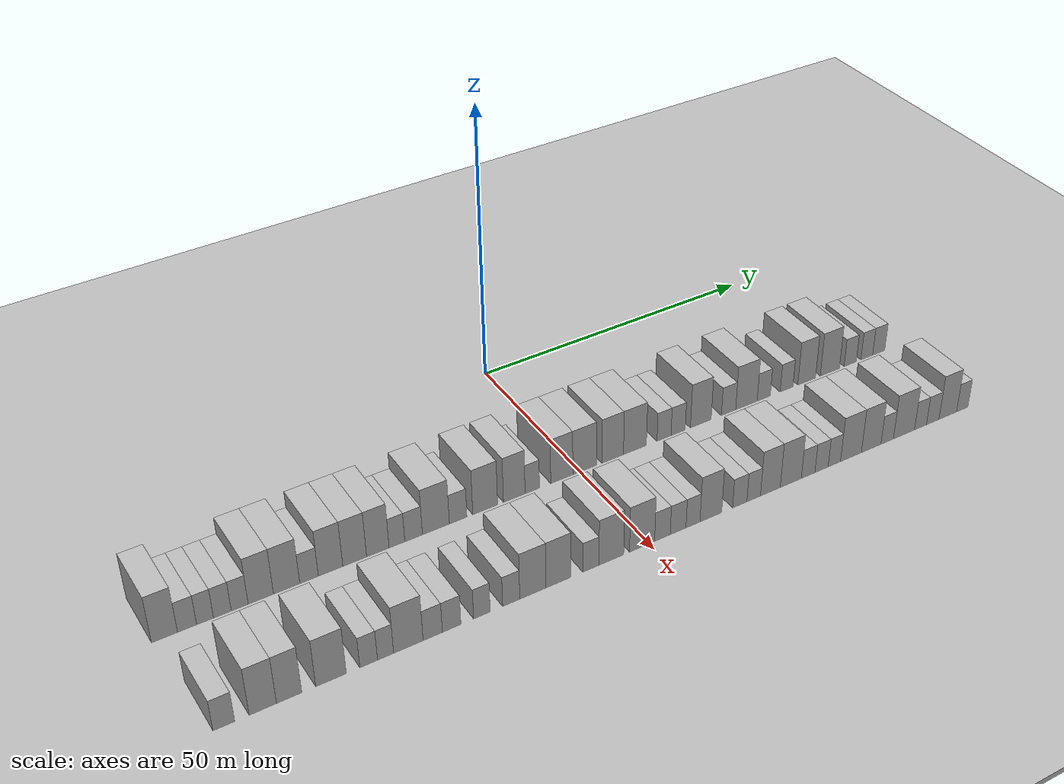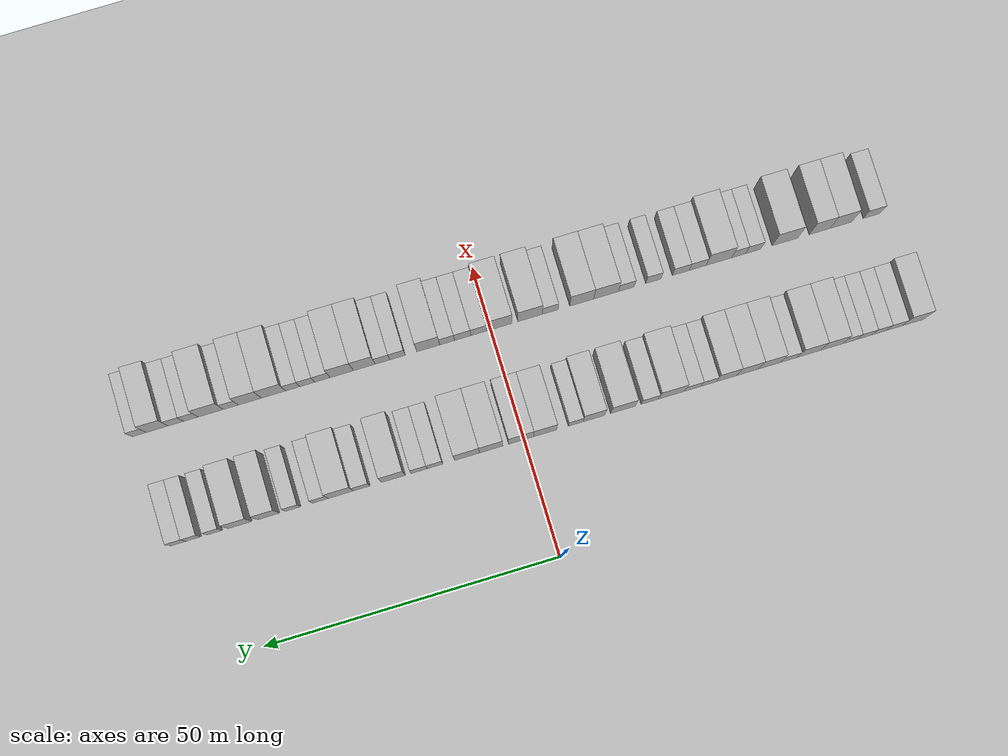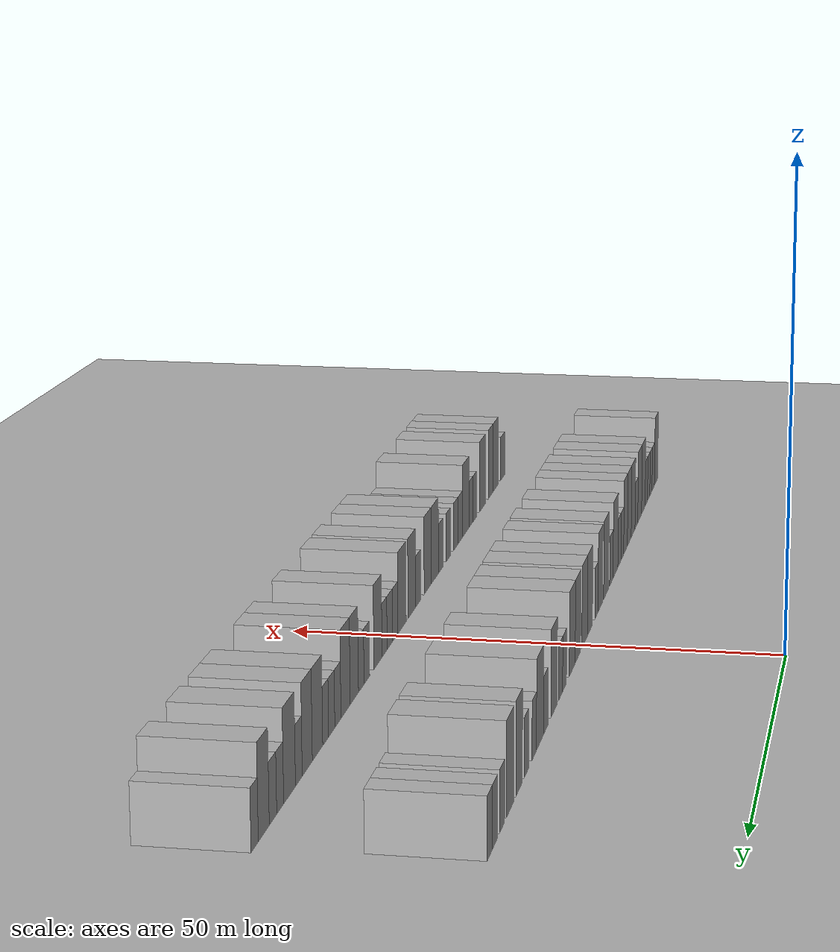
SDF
<sdf version="1.6">
 <world name="default">
  <include><name>ground_plane_1</name><uri>model://HANNAS_ground_plane</uri></include>
  <include>
   <name>ground_plane_2</name>
   <uri>model://HANNAS_ground_plane</uri>
   <pose>100 0 0  0 0 0</pose>
  </include>
  <model name="building_35">
   <static>1</static>
   <pose>25.0000 -66.9043 0 0.000000 0.000000 0.000000</pose>
   <link name="link">
    <pose>0 0 4.50 0 0 0</pose>
    <collision name="collision"><geometry><box><size>10.0000 3.7268 9.0000</size></box></geometry></collision>
    <visual name="visual">
     <cast_shadows>0</cast_shadows>
     <geometry><box><size>10.0000 3.7268 9.0000</size></box></geometry>
     <material>
      <script>
       <uri>model://HANNAS_wall/materials/scripts</uri>
       <uri>model://HANNAS_wall/materials/textures</uri>
       <name>vrc/HANNAS_wall</name>
      </script>
     </material>
    </visual>
   </link>
  </model>
  <model name="building_36">
   <static>1</static>
   <pose>25.0000 -63.6549 0 0.000000 0.000000 0.000000</pose>
   <link name="link">
    <pose>0 0 3.00 0 0 0</pose>
    <collision name="collision"><geometry><box><size>10.0000 2.7721 6.0000</size></box></geometry></collision>
    <visual name="visual">
     <cast_shadows>0</cast_shadows>
     <geometry><box><size>10.0000 2.7721 6.0000</size></box></geometry>
     <material>
      <script>
       <uri>model://HANNAS_wall/materials/scripts</uri>
       <uri>model://HANNAS_wall/materials/textures</uri>
       <name>vrc/HANNAS_wall</name>
      </script>
     </material>
    </visual>
   </link>
  </model>
  <model name="building_37">
   <static>1</static>
   <pose>25.0000 -61.0405 0 0.000000 0.000000 0.000000</pose>
   <link name="link">
    <pose>0 0 3.00 0 0 0</pose>
    <collision name="collision"><geometry><box><size>10.0000 2.4567 6.0000</size></box></geometry></collision>
    <visual name="visual">
     <cast_shadows>0</cast_shadows>
     <geometry><box><size>10.0000 2.4567 6.0000</size></box></geometry>
     <material>
      <script>
       <uri>model://HANNAS_wall/materials/scripts</uri>
       <uri>model://HANNAS_wall/materials/textures</uri>
       <name>vrc/HANNAS_wall</name>
      </script>
     </material>
    </visual>
   </link>
  </model>
  <model name="building_38">
   <static>1</static>
   <pose>25.0000 -58.5033 0 0.000000 0.000000 0.000000</pose>
   <link name="link">
    <pose>0 0 3.00 0 0 0</pose>
    <collision name="collision"><geometry><box><size>10.0000 2.6177 6.0000</size></box></geometry></collision>
    <visual name="visual">
     <cast_shadows>0</cast_shadows>
     <geometry><box><size>10.0000 2.6177 6.0000</size></box></geometry>
     <material>
      <script>
       <uri>model://HANNAS_wall/materials/scripts</uri>
       <uri>model://HANNAS_wall/materials/textures</uri>
       <name>vrc/HANNAS_wall</name>
      </script>
     </material>
    </visual>
   </link>
  </model>
  <model name="building_39">
   <static>1</static>
   <pose>25.0000 -55.9374 0 0.000000 0.000000 0.000000</pose>
   <link name="link">
    <pose>0 0 3.00 0 0 0</pose>
    <collision name="collision"><geometry><box><size>10.0000 2.5140 6.0000</size></box></geometry></collision>
    <visual name="visual">
     <cast_shadows>0</cast_shadows>
     <geometry><box><size>10.0000 2.5140 6.0000</size></box></geometry>
     <material>
      <script>
       <uri>model://HANNAS_wall/materials/scripts</uri>
       <uri>model://HANNAS_wall/materials/textures</uri>
       <name>vrc/HANNAS_wall</name>
      </script>
     </material>
    </visual>
   </link>
  </model>
  <model name="building_40">
   <static>1</static>
   <pose>25.0000 -52.7762 0 0.000000 0.000000 0.000000</pose>
   <link name="link">
    <pose>0 0 4.50 0 0 0</pose>
    <collision name="collision"><geometry><box><size>10.0000 3.8085 9.0000</size></box></geometry></collision>
    <visual name="visual">
     <cast_shadows>0</cast_shadows>
     <geometry><box><size>10.0000 3.8085 9.0000</size></box></geometry>
     <material>
      <script>
       <uri>model://HANNAS_wall/materials/scripts</uri>
       <uri>model://HANNAS_wall/materials/textures</uri>
       <name>vrc/HANNAS_wall</name>
      </script>
     </material>
    </visual>
   </link>
  </model>
  <model name="building_41">
   <static>1</static>
   <pose>25.0000 -48.8694 0 0.000000 0.000000 0.000000</pose>
   <link name="link">
    <pose>0 0 4.50 0 0 0</pose>
    <collision name="collision"><geometry><box><size>10.0000 4.0051 9.0000</size></box></geometry></collision>
    <visual name="visual">
     <cast_shadows>0</cast_shadows>
     <geometry><box><size>10.0000 4.0051 9.0000</size></box></geometry>
     <material>
      <script>
       <uri>model://HANNAS_wall/materials/scripts</uri>
       <uri>model://HANNAS_wall/materials/textures</uri>
       <name>vrc/HANNAS_wall</name>
      </script>
     </material>
    </visual>
   </link>
  </model>
  <model name="building_42">
   <static>1</static>
   <pose>25.0000 -45.4330 0 0.000000 0.000000 0.000000</pose>
   <link name="link">
    <pose>0 0 3.00 0 0 0</pose>
    <collision name="collision"><geometry><box><size>10.0000 2.8677 6.0000</size></box></geometry></collision>
    <visual name="visual">
     <cast_shadows>0</cast_shadows>
     <geometry><box><size>10.0000 2.8677 6.0000</size></box></geometry>
     <material>
      <script>
       <uri>model://HANNAS_wall/materials/scripts</uri>
       <uri>model://HANNAS_wall/materials/textures</uri>
       <name>vrc/HANNAS_wall</name>
      </script>
     </material>
    </visual>
   </link>
  </model>
  <model name="building_43">
   <static>1</static>
   <pose>25.0000 -42.0925 0 0.000000 0.000000 0.000000</pose>
   <link name="link">
    <pose>0 0 4.50 0 0 0</pose>
    <collision name="collision"><geometry><box><size>10.0000 3.8132 9.0000</size></box></geometry></collision>
    <visual name="visual">
     <cast_shadows>0</cast_shadows>
     <geometry><box><size>10.0000 3.8132 9.0000</size></box></geometry>
     <material>
      <script>
       <uri>model://HANNAS_wall/materials/scripts</uri>
       <uri>model://HANNAS_wall/materials/textures</uri>
       <name>vrc/HANNAS_wall</name>
      </script>
     </material>
    </visual>
   </link>
  </model>
  <model name="building_44">
   <static>1</static>
   <pose>25.0000 -38.3010 0 0.000000 0.000000 0.000000</pose>
   <link name="link">
    <pose>0 0 4.50 0 0 0</pose>
    <collision name="collision"><geometry><box><size>10.0000 3.7698 9.0000</size></box></geometry></collision>
    <visual name="visual">
     <cast_shadows>0</cast_shadows>
     <geometry><box><size>10.0000 3.7698 9.0000</size></box></geometry>
     <material>
      <script>
       <uri>model://HANNAS_wall/materials/scripts</uri>
       <uri>model://HANNAS_wall/materials/textures</uri>
       <name>vrc/HANNAS_wall</name>
      </script>
     </material>
    </visual>
   </link>
  </model>
  <model name="building_45">
   <static>1</static>
   <pose>25.0000 -34.6114 0 0.000000 0.000000 0.000000</pose>
   <link name="link">
    <pose>0 0 4.50 0 0 0</pose>
    <collision name="collision"><geometry><box><size>10.0000 3.6094 9.0000</size></box></geometry></collision>
    <visual name="visual">
     <cast_shadows>0</cast_shadows>
     <geometry><box><size>10.0000 3.6094 9.0000</size></box></geometry>
     <material>
      <script>
       <uri>model://HANNAS_wall/materials/scripts</uri>
       <uri>model://HANNAS_wall/materials/textures</uri>
       <name>vrc/HANNAS_wall</name>
      </script>
     </material>
    </visual>
   </link>
  </model>
  <model name="building_46">
   <static>1</static>
   <pose>25.0000 -31.5375 0 0.000000 0.000000 0.000000</pose>
   <link name="link">
    <pose>0 0 3.00 0 0 0</pose>
    <collision name="collision"><geometry><box><size>10.0000 2.5385 6.0000</size></box></geometry></collision>
    <visual name="visual">
     <cast_shadows>0</cast_shadows>
     <geometry><box><size>10.0000 2.5385 6.0000</size></box></geometry>
     <material>
      <script>
       <uri>model://HANNAS_wall/materials/scripts</uri>
       <uri>model://HANNAS_wall/materials/textures</uri>
       <name>vrc/HANNAS_wall</name>
      </script>
     </material>
    </visual>
   </link>
  </model>
  <model name="building_47">
   <static>1</static>
   <pose>25.0000 -28.8306 0 0.000000 0.000000 0.000000</pose>
   <link name="link">
    <pose>0 0 3.00 0 0 0</pose>
    <collision name="collision"><geometry><box><size>10.0000 2.8753 6.0000</size></box></geometry></collision>
    <visual name="visual">
     <cast_shadows>0</cast_shadows>
     <geometry><box><size>10.0000 2.8753 6.0000</size></box></geometry>
     <material>
      <script>
       <uri>model://HANNAS_wall/materials/scripts</uri>
       <uri>model://HANNAS_wall/materials/textures</uri>
       <name>vrc/HANNAS_wall</name>
      </script>
     </material>
    </visual>
   </link>
  </model>
  <model name="building_48">
   <static>1</static>
   <pose>25.0000 -25.1582 0 0.000000 0.000000 0.000000</pose>
   <link name="link">
    <pose>0 0 4.50 0 0 0</pose>
    <collision name="collision"><geometry><box><size>10.0000 4.4695 9.0000</size></box></geometry></collision>
    <visual name="visual">
     <cast_shadows>0</cast_shadows>
     <geometry><box><size>10.0000 4.4695 9.0000</size></box></geometry>
     <material>
      <script>
       <uri>model://HANNAS_wall/materials/scripts</uri>
       <uri>model://HANNAS_wall/materials/textures</uri>
       <name>vrc/HANNAS_wall</name>
      </script>
     </material>
    </visual>
   </link>
  </model>
  <model name="building_49">
   <static>1</static>
   <pose>25.0000 -21.4547 0 0.000000 0.000000 0.000000</pose>
   <link name="link">
    <pose>0 0 3.00 0 0 0</pose>
    <collision name="collision"><geometry><box><size>10.0000 2.9375 6.0000</size></box></geometry></collision>
    <visual name="visual">
     <cast_shadows>0</cast_shadows>
     <geometry><box><size>10.0000 2.9375 6.0000</size></box></geometry>
     <material>
      <script>
       <uri>model://HANNAS_wall/materials/scripts</uri>
       <uri>model://HANNAS_wall/materials/textures</uri>
       <name>vrc/HANNAS_wall</name>
      </script>
     </material>
    </visual>
   </link>
  </model>
  <model name="building_50">
   <static>1</static>
   <pose>25.0000 -16.8715 0 0.000000 0.000000 0.000000</pose>
   <link name="link">
    <pose>0 0 4.50 0 0 0</pose>
    <collision name="collision"><geometry><box><size>10.0000 4.2289 9.0000</size></box></geometry></collision>
    <visual name="visual">
     <cast_shadows>0</cast_shadows>
     <geometry><box><size>10.0000 4.2289 9.0000</size></box></geometry>
     <material>
      <script>
       <uri>model://HANNAS_wall/materials/scripts</uri>
       <uri>model://HANNAS_wall/materials/textures</uri>
       <name>vrc/HANNAS_wall</name>
      </script>
     </material>
    </visual>
   </link>
  </model>
  <model name="building_51">
   <static>1</static>
   <pose>25.0000 -11.8884 0 0.000000 0.000000 0.000000</pose>
   <link name="link">
    <pose>0 0 4.50 0 0 0</pose>
    <collision name="collision"><geometry><box><size>10.0000 3.7371 9.0000</size></box></geometry></collision>
    <visual name="visual">
     <cast_shadows>0</cast_shadows>
     <geometry><box><size>10.0000 3.7371 9.0000</size></box></geometry>
     <material>
      <script>
       <uri>model://HANNAS_wall/materials/scripts</uri>
       <uri>model://HANNAS_wall/materials/textures</uri>
       <name>vrc/HANNAS_wall</name>
      </script>
     </material>
    </visual>
   </link>
  </model>
  <model name="building_52">
   <static>1</static>
   <pose>25.0000 -8.7649 0 0.000000 0.000000 0.000000</pose>
   <link name="link">
    <pose>0 0 3.00 0 0 0</pose>
    <collision name="collision"><geometry><box><size>10.0000 2.5099 6.0000</size></box></geometry></collision>
    <visual name="visual">
     <cast_shadows>0</cast_shadows>
     <geometry><box><size>10.0000 2.5099 6.0000</size></box></geometry>
     <material>
      <script>
       <uri>model://HANNAS_wall/materials/scripts</uri>
       <uri>model://HANNAS_wall/materials/textures</uri>
       <name>vrc/HANNAS_wall</name>
      </script>
     </material>
    </visual>
   </link>
  </model>
  <model name="building_53">
   <static>1</static>
   <pose>25.0000 -3.5517 0 0.000000 0.000000 0.000000</pose>
   <link name="link">
    <pose>0 0 4.50 0 0 0</pose>
    <collision name="collision"><geometry><box><size>10.0000 3.9164 9.0000</size></box></geometry></collision>
    <visual name="visual">
     <cast_shadows>0</cast_shadows>
     <geometry><box><size>10.0000 3.9164 9.0000</size></box></geometry>
     <material>
      <script>
       <uri>model://HANNAS_wall/materials/scripts</uri>
       <uri>model://HANNAS_wall/materials/textures</uri>
       <name>vrc/HANNAS_wall</name>
      </script>
     </material>
    </visual>
   </link>
  </model>
  <model name="building_54">
   <static>1</static>
   <pose>25.0000 0.5425 0 0.000000 0.000000 0.000000</pose>
   <link name="link">
    <pose>0 0 4.50 0 0 0</pose>
    <collision name="collision"><geometry><box><size>10.0000 4.2722 9.0000</size></box></geometry></collision>
    <visual name="visual">
     <cast_shadows>0</cast_shadows>
     <geometry><box><size>10.0000 4.2722 9.0000</size></box></geometry>
     <material>
      <script>
       <uri>model://HANNAS_wall/materials/scripts</uri>
       <uri>model://HANNAS_wall/materials/textures</uri>
       <name>vrc/HANNAS_wall</name>
      </script>
     </material>
    </visual>
   </link>
  </model>
  <model name="building_55">
   <static>1</static>
   <pose>25.0000 5.6538 0 0.000000 0.000000 0.000000</pose>
   <link name="link">
    <pose>0 0 4.50 0 0 0</pose>
    <collision name="collision"><geometry><box><size>10.0000 3.9503 9.0000</size></box></geometry></collision>
    <visual name="visual">
     <cast_shadows>0</cast_shadows>
     <geometry><box><size>10.0000 3.9503 9.0000</size></box></geometry>
     <material>
      <script>
       <uri>model://HANNAS_wall/materials/scripts</uri>
       <uri>model://HANNAS_wall/materials/textures</uri>
       <name>vrc/HANNAS_wall</name>
      </script>
     </material>
    </visual>
   </link>
  </model>
  <model name="building_56">
   <static>1</static>
   <pose>25.0000 9.7577 0 0.000000 0.000000 0.000000</pose>
   <link name="link">
    <pose>0 0 4.50 0 0 0</pose>
    <collision name="collision"><geometry><box><size>10.0000 4.2577 9.0000</size></box></geometry></collision>
    <visual name="visual">
     <cast_shadows>0</cast_shadows>
     <geometry><box><size>10.0000 4.2577 9.0000</size></box></geometry>
     <material>
      <script>
       <uri>model://HANNAS_wall/materials/scripts</uri>
       <uri>model://HANNAS_wall/materials/textures</uri>
       <name>vrc/HANNAS_wall</name>
      </script>
     </material>
    </visual>
   </link>
  </model>
  <model name="building_57">
   <static>1</static>
   <pose>25.0000 15.2113 0 0.000000 0.000000 0.000000</pose>
   <link name="link">
    <pose>0 0 3.00 0 0 0</pose>
    <collision name="collision"><geometry><box><size>10.0000 2.6495 6.0000</size></box></geometry></collision>
    <visual name="visual">
     <cast_shadows>0</cast_shadows>
     <geometry><box><size>10.0000 2.6495 6.0000</size></box></geometry>
     <material>
      <script>
       <uri>model://HANNAS_wall/materials/scripts</uri>
       <uri>model://HANNAS_wall/materials/textures</uri>
       <name>vrc/HANNAS_wall</name>
      </script>
     </material>
    </visual>
   </link>
  </model>
  <model name="building_58">
   <static>1</static>
   <pose>25.0000 17.8901 0 0.000000 0.000000 0.000000</pose>
   <link name="link">
    <pose>0 0 3.00 0 0 0</pose>
    <collision name="collision"><geometry><box><size>10.0000 2.7081 6.0000</size></box></geometry></collision>
    <visual name="visual">
     <cast_shadows>0</cast_shadows>
     <geometry><box><size>10.0000 2.7081 6.0000</size></box></geometry>
     <material>
      <script>
       <uri>model://HANNAS_wall/materials/scripts</uri>
       <uri>model://HANNAS_wall/materials/textures</uri>
       <name>vrc/HANNAS_wall</name>
      </script>
     </material>
    </visual>
   </link>
  </model>
  <model name="building_59">
   <static>1</static>
   <pose>25.0000 22.2503 0 0.000000 0.000000 0.000000</pose>
   <link name="link">
    <pose>0 0 4.50 0 0 0</pose>
    <collision name="collision"><geometry><box><size>10.0000 4.0121 9.0000</size></box></geometry></collision>
    <visual name="visual">
     <cast_shadows>0</cast_shadows>
     <geometry><box><size>10.0000 4.0121 9.0000</size></box></geometry>
     <material>
      <script>
       <uri>model://HANNAS_wall/materials/scripts</uri>
       <uri>model://HANNAS_wall/materials/textures</uri>
       <name>vrc/HANNAS_wall</name>
      </script>
     </material>
    </visual>
   </link>
  </model>
  <model name="building_60">
   <static>1</static>
   <pose>25.0000 27.6632 0 0.000000 0.000000 0.000000</pose>
   <link name="link">
    <pose>0 0 3.00 0 0 0</pose>
    <collision name="collision"><geometry><box><size>10.0000 2.8139 6.0000</size></box></geometry></collision>
    <visual name="visual">
     <cast_shadows>0</cast_shadows>
     <geometry><box><size>10.0000 2.8139 6.0000</size></box></geometry>
     <material>
      <script>
       <uri>model://HANNAS_wall/materials/scripts</uri>
       <uri>model://HANNAS_wall/materials/textures</uri>
       <name>vrc/HANNAS_wall</name>
      </script>
     </material>
    </visual>
   </link>
  </model>
  <model name="building_61">
   <static>1</static>
   <pose>25.0000 31.2093 0 0.000000 0.000000 0.000000</pose>
   <link name="link">
    <pose>0 0 4.50 0 0 0</pose>
    <collision name="collision"><geometry><box><size>10.0000 4.2782 9.0000</size></box></geometry></collision>
    <visual name="visual">
     <cast_shadows>0</cast_shadows>
     <geometry><box><size>10.0000 4.2782 9.0000</size></box></geometry>
     <material>
      <script>
       <uri>model://HANNAS_wall/materials/scripts</uri>
       <uri>model://HANNAS_wall/materials/textures</uri>
       <name>vrc/HANNAS_wall</name>
      </script>
     </material>
    </visual>
   </link>
  </model>
  <model name="building_62">
   <static>1</static>
   <pose>25.0000 34.6668 0 0.000000 0.000000 0.000000</pose>
   <link name="link">
    <pose>0 0 3.00 0 0 0</pose>
    <collision name="collision"><geometry><box><size>10.0000 2.6368 6.0000</size></box></geometry></collision>
    <visual name="visual">
     <cast_shadows>0</cast_shadows>
     <geometry><box><size>10.0000 2.6368 6.0000</size></box></geometry>
     <material>
      <script>
       <uri>model://HANNAS_wall/materials/scripts</uri>
       <uri>model://HANNAS_wall/materials/textures</uri>
       <name>vrc/HANNAS_wall</name>
      </script>
     </material>
    </visual>
   </link>
  </model>
  <model name="building_63">
   <static>1</static>
   <pose>25.0000 39.2865 0 0.000000 0.000000 0.000000</pose>
   <link name="link">
    <pose>0 0 3.00 0 0 0</pose>
    <collision name="collision"><geometry><box><size>10.0000 2.6026 6.0000</size></box></geometry></collision>
    <visual name="visual">
     <cast_shadows>0</cast_shadows>
     <geometry><box><size>10.0000 2.6026 6.0000</size></box></geometry>
     <material>
      <script>
       <uri>model://HANNAS_wall/materials/scripts</uri>
       <uri>model://HANNAS_wall/materials/textures</uri>
       <name>vrc/HANNAS_wall</name>
      </script>
     </material>
    </visual>
   </link>
  </model>
  <model name="building_64">
   <static>1</static>
   <pose>25.0000 43.4128 0 0.000000 0.000000 0.000000</pose>
   <link name="link">
    <pose>0 0 4.50 0 0 0</pose>
    <collision name="collision"><geometry><box><size>10.0000 3.6501 9.0000</size></box></geometry></collision>
    <visual name="visual">
     <cast_shadows>0</cast_shadows>
     <geometry><box><size>10.0000 3.6501 9.0000</size></box></geometry>
     <material>
      <script>
       <uri>model://HANNAS_wall/materials/scripts</uri>
       <uri>model://HANNAS_wall/materials/textures</uri>
       <name>vrc/HANNAS_wall</name>
      </script>
     </material>
    </visual>
   </link>
  </model>
  <model name="building_65">
   <static>1</static>
   <pose>25.0000 48.2362 0 0.000000 0.000000 0.000000</pose>
   <link name="link">
    <pose>0 0 4.50 0 0 0</pose>
    <collision name="collision"><geometry><box><size>10.0000 3.9966 9.0000</size></box></geometry></collision>
    <visual name="visual">
     <cast_shadows>0</cast_shadows>
     <geometry><box><size>10.0000 3.9966 9.0000</size></box></geometry>
     <material>
      <script>
       <uri>model://HANNAS_wall/materials/scripts</uri>
       <uri>model://HANNAS_wall/materials/textures</uri>
       <name>vrc/HANNAS_wall</name>
      </script>
     </material>
    </visual>
   </link>
  </model>
  <model name="building_66">
   <static>1</static>
   <pose>25.0000 52.5221 0 0.000000 0.000000 0.000000</pose>
   <link name="link">
    <pose>0 0 3.00 0 0 0</pose>
    <collision name="collision"><geometry><box><size>10.0000 2.5753 6.0000</size></box></geometry></collision>
    <visual name="visual">
     <cast_shadows>0</cast_shadows>
     <geometry><box><size>10.0000 2.5753 6.0000</size></box></geometry>
     <material>
      <script>
       <uri>model://HANNAS_wall/materials/scripts</uri>
       <uri>model://HANNAS_wall/materials/textures</uri>
       <name>vrc/HANNAS_wall</name>
      </script>
     </material>
    </visual>
   </link>
  </model>
  <model name="building_67">
   <static>1</static>
   <pose>25.0000 56.0720 0 0.000000 0.000000 0.000000</pose>
   <link name="link">
    <pose>0 0 3.00 0 0 0</pose>
    <collision name="collision"><geometry><box><size>10.0000 2.5245 6.0000</size></box></geometry></collision>
    <visual name="visual">
     <cast_shadows>0</cast_shadows>
     <geometry><box><size>10.0000 2.5245 6.0000</size></box></geometry>
     <material>
      <script>
       <uri>model://HANNAS_wall/materials/scripts</uri>
       <uri>model://HANNAS_wall/materials/textures</uri>
       <name>vrc/HANNAS_wall</name>
      </script>
     </material>
    </visual>
   </link>
  </model>
  <model name="building_68">
   <static>1</static>
   <pose>25.0000 58.6420 0 0.000000 0.000000 0.000000</pose>
   <link name="link">
    <pose>0 0 3.00 0 0 0</pose>
    <collision name="collision"><geometry><box><size>10.0000 2.6156 6.0000</size></box></geometry></collision>
    <visual name="visual">
     <cast_shadows>0</cast_shadows>
     <geometry><box><size>10.0000 2.6156 6.0000</size></box></geometry>
     <material>
      <script>
       <uri>model://HANNAS_wall/materials/scripts</uri>
       <uri>model://HANNAS_wall/materials/textures</uri>
       <name>vrc/HANNAS_wall</name>
      </script>
     </material>
    </visual>
   </link>
  </model>
  <model name="building_139">
   <static>1</static>
   <pose>44.0000 -66.0004 0 0.000000 0.000000 0.000000</pose>
   <link name="link">
    <pose>0 0 3.00 0 0 0</pose>
    <collision name="collision"><geometry><box><size>10.0000 2.9925 6.0000</size></box></geometry></collision>
    <visual name="visual">
     <cast_shadows>0</cast_shadows>
     <geometry><box><size>10.0000 2.9925 6.0000</size></box></geometry>
     <material>
      <script>
       <uri>model://HANNAS_wall/materials/scripts</uri>
       <uri>model://HANNAS_wall/materials/textures</uri>
       <name>vrc/HANNAS_wall</name>
      </script>
     </material>
    </visual>
   </link>
  </model>
  <model name="building_140">
   <static>1</static>
   <pose>44.0000 -60.5923 0 0.000000 0.000000 0.000000</pose>
   <link name="link">
    <pose>0 0 4.50 0 0 0</pose>
    <collision name="collision"><geometry><box><size>10.0000 3.8236 9.0000</size></box></geometry></collision>
    <visual name="visual">
     <cast_shadows>0</cast_shadows>
     <geometry><box><size>10.0000 3.8236 9.0000</size></box></geometry>
     <material>
      <script>
       <uri>model://HANNAS_wall/materials/scripts</uri>
       <uri>model://HANNAS_wall/materials/textures</uri>
       <name>vrc/HANNAS_wall</name>
      </script>
     </material>
    </visual>
   </link>
  </model>
  <model name="building_141">
   <static>1</static>
   <pose>44.0000 -56.8803 0 0.000000 0.000000 0.000000</pose>
   <link name="link">
    <pose>0 0 4.50 0 0 0</pose>
    <collision name="collision"><geometry><box><size>10.0000 3.6005 9.0000</size></box></geometry></collision>
    <visual name="visual">
     <cast_shadows>0</cast_shadows>
     <geometry><box><size>10.0000 3.6005 9.0000</size></box></geometry>
     <material>
      <script>
       <uri>model://HANNAS_wall/materials/scripts</uri>
       <uri>model://HANNAS_wall/materials/textures</uri>
       <name>vrc/HANNAS_wall</name>
      </script>
     </material>
    </visual>
   </link>
  </model>
  <model name="building_142">
   <static>1</static>
   <pose>44.0000 -50.8599 0 0.000000 0.000000 0.000000</pose>
   <link name="link">
    <pose>0 0 4.50 0 0 0</pose>
    <collision name="collision"><geometry><box><size>10.0000 4.4402 9.0000</size></box></geometry></collision>
    <visual name="visual">
     <cast_shadows>0</cast_shadows>
     <geometry><box><size>10.0000 4.4402 9.0000</size></box></geometry>
     <material>
      <script>
       <uri>model://HANNAS_wall/materials/scripts</uri>
       <uri>model://HANNAS_wall/materials/textures</uri>
       <name>vrc/HANNAS_wall</name>
      </script>
     </material>
    </visual>
   </link>
  </model>
  <model name="building_143">
   <static>1</static>
   <pose>44.0000 -45.3342 0 0.000000 0.000000 0.000000</pose>
   <link name="link">
    <pose>0 0 3.00 0 0 0</pose>
    <collision name="collision"><geometry><box><size>10.0000 2.6111 6.0000</size></box></geometry></collision>
    <visual name="visual">
     <cast_shadows>0</cast_shadows>
     <geometry><box><size>10.0000 2.6111 6.0000</size></box></geometry>
     <material>
      <script>
       <uri>model://HANNAS_wall/materials/scripts</uri>
       <uri>model://HANNAS_wall/materials/textures</uri>
       <name>vrc/HANNAS_wall</name>
      </script>
     </material>
    </visual>
   </link>
  </model>
  <model name="building_144">
   <static>1</static>
   <pose>44.0000 -42.8206 0 0.000000 0.000000 0.000000</pose>
   <link name="link">
    <pose>0 0 3.00 0 0 0</pose>
    <collision name="collision"><geometry><box><size>10.0000 2.4163 6.0000</size></box></geometry></collision>
    <visual name="visual">
     <cast_shadows>0</cast_shadows>
     <geometry><box><size>10.0000 2.4163 6.0000</size></box></geometry>
     <material>
      <script>
       <uri>model://HANNAS_wall/materials/scripts</uri>
       <uri>model://HANNAS_wall/materials/textures</uri>
       <name>vrc/HANNAS_wall</name>
      </script>
     </material>
    </visual>
   </link>
  </model>
  <model name="building_145">
   <static>1</static>
   <pose>44.0000 -39.3767 0 0.000000 0.000000 0.000000</pose>
   <link name="link">
    <pose>0 0 4.50 0 0 0</pose>
    <collision name="collision"><geometry><box><size>10.0000 4.4714 9.0000</size></box></geometry></collision>
    <visual name="visual">
     <cast_shadows>0</cast_shadows>
     <geometry><box><size>10.0000 4.4714 9.0000</size></box></geometry>
     <material>
      <script>
       <uri>model://HANNAS_wall/materials/scripts</uri>
       <uri>model://HANNAS_wall/materials/textures</uri>
       <name>vrc/HANNAS_wall</name>
      </script>
     </material>
    </visual>
   </link>
  </model>
  <model name="building_146">
   <static>1</static>
   <pose>44.0000 -35.6579 0 0.000000 0.000000 0.000000</pose>
   <link name="link">
    <pose>0 0 3.00 0 0 0</pose>
    <collision name="collision"><geometry><box><size>10.0000 2.9663 6.0000</size></box></geometry></collision>
    <visual name="visual">
     <cast_shadows>0</cast_shadows>
     <geometry><box><size>10.0000 2.9663 6.0000</size></box></geometry>
     <material>
      <script>
       <uri>model://HANNAS_wall/materials/scripts</uri>
       <uri>model://HANNAS_wall/materials/textures</uri>
       <name>vrc/HANNAS_wall</name>
      </script>
     </material>
    </visual>
   </link>
  </model>
  <model name="building_147">
   <static>1</static>
   <pose>44.0000 -32.7363 0 0.000000 0.000000 0.000000</pose>
   <link name="link">
    <pose>0 0 3.00 0 0 0</pose>
    <collision name="collision"><geometry><box><size>10.0000 2.8770 6.0000</size></box></geometry></collision>
    <visual name="visual">
     <cast_shadows>0</cast_shadows>
     <geometry><box><size>10.0000 2.8770 6.0000</size></box></geometry>
     <material>
      <script>
       <uri>model://HANNAS_wall/materials/scripts</uri>
       <uri>model://HANNAS_wall/materials/textures</uri>
       <name>vrc/HANNAS_wall</name>
      </script>
     </material>
    </visual>
   </link>
  </model>
  <model name="building_148">
   <static>1</static>
   <pose>44.0000 -27.9947 0 0.000000 0.000000 0.000000</pose>
   <link name="link">
    <pose>0 0 3.00 0 0 0</pose>
    <collision name="collision"><geometry><box><size>10.0000 2.6060 6.0000</size></box></geometry></collision>
    <visual name="visual">
     <cast_shadows>0</cast_shadows>
     <geometry><box><size>10.0000 2.6060 6.0000</size></box></geometry>
     <material>
      <script>
       <uri>model://HANNAS_wall/materials/scripts</uri>
       <uri>model://HANNAS_wall/materials/textures</uri>
       <name>vrc/HANNAS_wall</name>
      </script>
     </material>
    </visual>
   </link>
  </model>
  <model name="building_149">
   <static>1</static>
   <pose>44.0000 -23.3169 0 0.000000 0.000000 0.000000</pose>
   <link name="link">
    <pose>0 0 3.00 0 0 0</pose>
    <collision name="collision"><geometry><box><size>10.0000 2.7497 6.0000</size></box></geometry></collision>
    <visual name="visual">
     <cast_shadows>0</cast_shadows>
     <geometry><box><size>10.0000 2.7497 6.0000</size></box></geometry>
     <material>
      <script>
       <uri>model://HANNAS_wall/materials/scripts</uri>
       <uri>model://HANNAS_wall/materials/textures</uri>
       <name>vrc/HANNAS_wall</name>
      </script>
     </material>
    </visual>
   </link>
  </model>
  <model name="building_150">
   <static>1</static>
   <pose>44.0000 -19.8086 0 0.000000 0.000000 0.000000</pose>
   <link name="link">
    <pose>0 0 4.50 0 0 0</pose>
    <collision name="collision"><geometry><box><size>10.0000 4.2669 9.0000</size></box></geometry></collision>
    <visual name="visual">
     <cast_shadows>0</cast_shadows>
     <geometry><box><size>10.0000 4.2669 9.0000</size></box></geometry>
     <material>
      <script>
       <uri>model://HANNAS_wall/materials/scripts</uri>
       <uri>model://HANNAS_wall/materials/textures</uri>
       <name>vrc/HANNAS_wall</name>
      </script>
     </material>
    </visual>
   </link>
  </model>
  <model name="building_151">
   <static>1</static>
   <pose>44.0000 -15.6189 0 0.000000 0.000000 0.000000</pose>
   <link name="link">
    <pose>0 0 4.50 0 0 0</pose>
    <collision name="collision"><geometry><box><size>10.0000 4.1125 9.0000</size></box></geometry></collision>
    <visual name="visual">
     <cast_shadows>0</cast_shadows>
     <geometry><box><size>10.0000 4.1125 9.0000</size></box></geometry>
     <material>
      <script>
       <uri>model://HANNAS_wall/materials/scripts</uri>
       <uri>model://HANNAS_wall/materials/textures</uri>
       <name>vrc/HANNAS_wall</name>
      </script>
     </material>
    </visual>
   </link>
  </model>
  <model name="building_152">
   <static>1</static>
   <pose>44.0000 -10.2044 0 0.000000 0.000000 0.000000</pose>
   <link name="link">
    <pose>0 0 3.00 0 0 0</pose>
    <collision name="collision"><geometry><box><size>10.0000 2.7166 6.0000</size></box></geometry></collision>
    <visual name="visual">
     <cast_shadows>0</cast_shadows>
     <geometry><box><size>10.0000 2.7166 6.0000</size></box></geometry>
     <material>
      <script>
       <uri>model://HANNAS_wall/materials/scripts</uri>
       <uri>model://HANNAS_wall/materials/textures</uri>
       <name>vrc/HANNAS_wall</name>
      </script>
     </material>
    </visual>
   </link>
  </model>
  <model name="building_153">
   <static>1</static>
   <pose>44.0000 -6.7381 0 0.000000 0.000000 0.000000</pose>
   <link name="link">
    <pose>0 0 4.50 0 0 0</pose>
    <collision name="collision"><geometry><box><size>10.0000 4.2159 9.0000</size></box></geometry></collision>
    <visual name="visual">
     <cast_shadows>0</cast_shadows>
     <geometry><box><size>10.0000 4.2159 9.0000</size></box></geometry>
     <material>
      <script>
       <uri>model://HANNAS_wall/materials/scripts</uri>
       <uri>model://HANNAS_wall/materials/textures</uri>
       <name>vrc/HANNAS_wall</name>
      </script>
     </material>
    </visual>
   </link>
  </model>
  <model name="building_154">
   <static>1</static>
   <pose>44.0000 -1.4527 0 0.000000 0.000000 0.000000</pose>
   <link name="link">
    <pose>0 0 4.50 0 0 0</pose>
    <collision name="collision"><geometry><box><size>10.0000 4.3549 9.0000</size></box></geometry></collision>
    <visual name="visual">
     <cast_shadows>0</cast_shadows>
     <geometry><box><size>10.0000 4.3549 9.0000</size></box></geometry>
     <material>
      <script>
       <uri>model://HANNAS_wall/materials/scripts</uri>
       <uri>model://HANNAS_wall/materials/textures</uri>
       <name>vrc/HANNAS_wall</name>
      </script>
     </material>
    </visual>
   </link>
  </model>
  <model name="building_155">
   <static>1</static>
   <pose>44.0000 2.0956 0 0.000000 0.000000 0.000000</pose>
   <link name="link">
    <pose>0 0 3.00 0 0 0</pose>
    <collision name="collision"><geometry><box><size>10.0000 2.7419 6.0000</size></box></geometry></collision>
    <visual name="visual">
     <cast_shadows>0</cast_shadows>
     <geometry><box><size>10.0000 2.7419 6.0000</size></box></geometry>
     <material>
      <script>
       <uri>model://HANNAS_wall/materials/scripts</uri>
       <uri>model://HANNAS_wall/materials/textures</uri>
       <name>vrc/HANNAS_wall</name>
      </script>
     </material>
    </visual>
   </link>
  </model>
  <model name="building_156">
   <static>1</static>
   <pose>44.0000 4.8642 0 0.000000 0.000000 0.000000</pose>
   <link name="link">
    <pose>0 0 3.00 0 0 0</pose>
    <collision name="collision"><geometry><box><size>10.0000 2.7952 6.0000</size></box></geometry></collision>
    <visual name="visual">
     <cast_shadows>0</cast_shadows>
     <geometry><box><size>10.0000 2.7952 6.0000</size></box></geometry>
     <material>
      <script>
       <uri>model://HANNAS_wall/materials/scripts</uri>
       <uri>model://HANNAS_wall/materials/textures</uri>
       <name>vrc/HANNAS_wall</name>
      </script>
     </material>
    </visual>
   </link>
  </model>
  <model name="building_157">
   <static>1</static>
   <pose>44.0000 7.5196 0 0.000000 0.000000 0.000000</pose>
   <link name="link">
    <pose>0 0 3.00 0 0 0</pose>
    <collision name="collision"><geometry><box><size>10.0000 2.5157 6.0000</size></box></geometry></collision>
    <visual name="visual">
     <cast_shadows>0</cast_shadows>
     <geometry><box><size>10.0000 2.5157 6.0000</size></box></geometry>
     <material>
      <script>
       <uri>model://HANNAS_wall/materials/scripts</uri>
       <uri>model://HANNAS_wall/materials/textures</uri>
       <name>vrc/HANNAS_wall</name>
      </script>
     </material>
    </visual>
   </link>
  </model>
  <model name="building_158">
   <static>1</static>
   <pose>44.0000 10.7416 0 0.000000 0.000000 0.000000</pose>
   <link name="link">
    <pose>0 0 4.50 0 0 0</pose>
    <collision name="collision"><geometry><box><size>10.0000 3.9282 9.0000</size></box></geometry></collision>
    <visual name="visual">
     <cast_shadows>0</cast_shadows>
     <geometry><box><size>10.0000 3.9282 9.0000</size></box></geometry>
     <material>
      <script>
       <uri>model://HANNAS_wall/materials/scripts</uri>
       <uri>model://HANNAS_wall/materials/textures</uri>
       <name>vrc/HANNAS_wall</name>
      </script>
     </material>
    </visual>
   </link>
  </model>
  <model name="building_159">
   <static>1</static>
   <pose>44.0000 16.0179 0 0.000000 0.000000 0.000000</pose>
   <link name="link">
    <pose>0 0 3.00 0 0 0</pose>
    <collision name="collision"><geometry><box><size>10.0000 2.6243 6.0000</size></box></geometry></collision>
    <visual name="visual">
     <cast_shadows>0</cast_shadows>
     <geometry><box><size>10.0000 2.6243 6.0000</size></box></geometry>
     <material>
      <script>
       <uri>model://HANNAS_wall/materials/scripts</uri>
       <uri>model://HANNAS_wall/materials/textures</uri>
       <name>vrc/HANNAS_wall</name>
      </script>
     </material>
    </visual>
   </link>
  </model>
  <model name="building_160">
   <static>1</static>
   <pose>44.0000 18.5943 0 0.000000 0.000000 0.000000</pose>
   <link name="link">
    <pose>0 0 3.00 0 0 0</pose>
    <collision name="collision"><geometry><box><size>10.0000 2.5286 6.0000</size></box></geometry></collision>
    <visual name="visual">
     <cast_shadows>0</cast_shadows>
     <geometry><box><size>10.0000 2.5286 6.0000</size></box></geometry>
     <material>
      <script>
       <uri>model://HANNAS_wall/materials/scripts</uri>
       <uri>model://HANNAS_wall/materials/textures</uri>
       <name>vrc/HANNAS_wall</name>
      </script>
     </material>
    </visual>
   </link>
  </model>
  <model name="building_161">
   <static>1</static>
   <pose>44.0000 21.7211 0 0.000000 0.000000 0.000000</pose>
   <link name="link">
    <pose>0 0 4.50 0 0 0</pose>
    <collision name="collision"><geometry><box><size>10.0000 3.7251 9.0000</size></box></geometry></collision>
    <visual name="visual">
     <cast_shadows>0</cast_shadows>
     <geometry><box><size>10.0000 3.7251 9.0000</size></box></geometry>
     <material>
      <script>
       <uri>model://HANNAS_wall/materials/scripts</uri>
       <uri>model://HANNAS_wall/materials/textures</uri>
       <name>vrc/HANNAS_wall</name>
      </script>
     </material>
    </visual>
   </link>
  </model>
  <model name="building_162">
   <static>1</static>
   <pose>44.0000 25.5827 0 0.000000 0.000000 0.000000</pose>
   <link name="link">
    <pose>0 0 4.50 0 0 0</pose>
    <collision name="collision"><geometry><box><size>10.0000 3.9980 9.0000</size></box></geometry></collision>
    <visual name="visual">
     <cast_shadows>0</cast_shadows>
     <geometry><box><size>10.0000 3.9980 9.0000</size></box></geometry>
     <material>
      <script>
       <uri>model://HANNAS_wall/materials/scripts</uri>
       <uri>model://HANNAS_wall/materials/textures</uri>
       <name>vrc/HANNAS_wall</name>
      </script>
     </material>
    </visual>
   </link>
  </model>
  <model name="building_163">
   <static>1</static>
   <pose>44.0000 28.8934 0 0.000000 0.000000 0.000000</pose>
   <link name="link">
    <pose>0 0 3.00 0 0 0</pose>
    <collision name="collision"><geometry><box><size>10.0000 2.6234 6.0000</size></box></geometry></collision>
    <visual name="visual">
     <cast_shadows>0</cast_shadows>
     <geometry><box><size>10.0000 2.6234 6.0000</size></box></geometry>
     <material>
      <script>
       <uri>model://HANNAS_wall/materials/scripts</uri>
       <uri>model://HANNAS_wall/materials/textures</uri>
       <name>vrc/HANNAS_wall</name>
      </script>
     </material>
    </visual>
   </link>
  </model>
  <model name="building_164">
   <static>1</static>
   <pose>44.0000 31.4878 0 0.000000 0.000000 0.000000</pose>
   <link name="link">
    <pose>0 0 3.00 0 0 0</pose>
    <collision name="collision"><geometry><box><size>10.0000 2.5654 6.0000</size></box></geometry></collision>
    <visual name="visual">
     <cast_shadows>0</cast_shadows>
     <geometry><box><size>10.0000 2.5654 6.0000</size></box></geometry>
     <material>
      <script>
       <uri>model://HANNAS_wall/materials/scripts</uri>
       <uri>model://HANNAS_wall/materials/textures</uri>
       <name>vrc/HANNAS_wall</name>
      </script>
     </material>
    </visual>
   </link>
  </model>
  <model name="building_165">
   <static>1</static>
   <pose>44.0000 33.9761 0 0.000000 0.000000 0.000000</pose>
   <link name="link">
    <pose>0 0 3.00 0 0 0</pose>
    <collision name="collision"><geometry><box><size>10.0000 2.4113 6.0000</size></box></geometry></collision>
    <visual name="visual">
     <cast_shadows>0</cast_shadows>
     <geometry><box><size>10.0000 2.4113 6.0000</size></box></geometry>
     <material>
      <script>
       <uri>model://HANNAS_wall/materials/scripts</uri>
       <uri>model://HANNAS_wall/materials/textures</uri>
       <name>vrc/HANNAS_wall</name>
      </script>
     </material>
    </visual>
   </link>
  </model>
  <model name="building_166">
   <static>1</static>
   <pose>44.0000 37.2499 0 0.000000 0.000000 0.000000</pose>
   <link name="link">
    <pose>0 0 4.50 0 0 0</pose>
    <collision name="collision"><geometry><box><size>10.0000 4.1365 9.0000</size></box></geometry></collision>
    <visual name="visual">
     <cast_shadows>0</cast_shadows>
     <geometry><box><size>10.0000 4.1365 9.0000</size></box></geometry>
     <material>
      <script>
       <uri>model://HANNAS_wall/materials/scripts</uri>
       <uri>model://HANNAS_wall/materials/textures</uri>
       <name>vrc/HANNAS_wall</name>
      </script>
     </material>
    </visual>
   </link>
  </model>
  <model name="building_167">
   <static>1</static>
   <pose>44.0000 41.2708 0 0.000000 0.000000 0.000000</pose>
   <link name="link">
    <pose>0 0 4.50 0 0 0</pose>
    <collision name="collision"><geometry><box><size>10.0000 3.9053 9.0000</size></box></geometry></collision>
    <visual name="visual">
     <cast_shadows>0</cast_shadows>
     <geometry><box><size>10.0000 3.9053 9.0000</size></box></geometry>
     <material>
      <script>
       <uri>model://HANNAS_wall/materials/scripts</uri>
       <uri>model://HANNAS_wall/materials/textures</uri>
       <name>vrc/HANNAS_wall</name>
      </script>
     </material>
    </visual>
   </link>
  </model>
  <model name="building_168">
   <static>1</static>
   <pose>44.0000 44.4921 0 0.000000 0.000000 0.000000</pose>
   <link name="link">
    <pose>0 0 3.00 0 0 0</pose>
    <collision name="collision"><geometry><box><size>10.0000 2.5373 6.0000</size></box></geometry></collision>
    <visual name="visual">
     <cast_shadows>0</cast_shadows>
     <geometry><box><size>10.0000 2.5373 6.0000</size></box></geometry>
     <material>
      <script>
       <uri>model://HANNAS_wall/materials/scripts</uri>
       <uri>model://HANNAS_wall/materials/textures</uri>
       <name>vrc/HANNAS_wall</name>
      </script>
     </material>
    </visual>
   </link>
  </model>
  <model name="building_169">
   <static>1</static>
   <pose>44.0000 47.9134 0 0.000000 0.000000 0.000000</pose>
   <link name="link">
    <pose>0 0 4.50 0 0 0</pose>
    <collision name="collision"><geometry><box><size>10.0000 4.3054 9.0000</size></box></geometry></collision>
    <visual name="visual">
     <cast_shadows>0</cast_shadows>
     <geometry><box><size>10.0000 4.3054 9.0000</size></box></geometry>
     <material>
      <script>
       <uri>model://HANNAS_wall/materials/scripts</uri>
       <uri>model://HANNAS_wall/materials/textures</uri>
       <name>vrc/HANNAS_wall</name>
      </script>
     </material>
    </visual>
   </link>
  </model>
  <model name="building_170">
   <static>1</static>
   <pose>44.0000 51.3032 0 0.000000 0.000000 0.000000</pose>
   <link name="link">
    <pose>0 0 3.00 0 0 0</pose>
    <collision name="collision"><geometry><box><size>10.0000 2.4741 6.0000</size></box></geometry></collision>
    <visual name="visual">
     <cast_shadows>0</cast_shadows>
     <geometry><box><size>10.0000 2.4741 6.0000</size></box></geometry>
     <material>
      <script>
       <uri>model://HANNAS_wall/materials/scripts</uri>
       <uri>model://HANNAS_wall/materials/textures</uri>
       <name>vrc/HANNAS_wall</name>
      </script>
     </material>
    </visual>
   </link>
  </model>
  <model name="building_171">
   <static>1</static>
   <pose>44.0000 53.8397 0 0.000000 0.000000 0.000000</pose>
   <link name="link">
    <pose>0 0 3.00 0 0 0</pose>
    <collision name="collision"><geometry><box><size>10.0000 2.5991 6.0000</size></box></geometry></collision>
    <visual name="visual">
     <cast_shadows>0</cast_shadows>
     <geometry><box><size>10.0000 2.5991 6.0000</size></box></geometry>
     <material>
      <script>
       <uri>model://HANNAS_wall/materials/scripts</uri>
       <uri>model://HANNAS_wall/materials/textures</uri>
       <name>vrc/HANNAS_wall</name>
      </script>
     </material>
    </visual>
   </link>
  </model>
  <model name="building_172">
   <static>1</static>
   <pose>44.0000 56.9945 0 0.000000 0.000000 0.000000</pose>
   <link name="link">
    <pose>0 0 4.50 0 0 0</pose>
    <collision name="collision"><geometry><box><size>10.0000 3.7104 9.0000</size></box></geometry></collision>
    <visual name="visual">
     <cast_shadows>0</cast_shadows>
     <geometry><box><size>10.0000 3.7104 9.0000</size></box></geometry>
     <material>
      <script>
       <uri>model://HANNAS_wall/materials/scripts</uri>
       <uri>model://HANNAS_wall/materials/textures</uri>
       <name>vrc/HANNAS_wall</name>
      </script>
     </material>
    </visual>
   </link>
  </model>
  <model name="building_173">
   <static>1</static>
   <pose>44.0000 60.0554 0 0.000000 0.000000 0.000000</pose>
   <link name="link">
    <pose>0 0 3.00 0 0 0</pose>
    <collision name="collision"><geometry><box><size>10.0000 2.4115 6.0000</size></box></geometry></collision>
    <visual name="visual">
     <cast_shadows>0</cast_shadows>
     <geometry><box><size>10.0000 2.4115 6.0000</size></box></geometry>
     <material>
      <script>
       <uri>model://HANNAS_wall/materials/scripts</uri>
       <uri>model://HANNAS_wall/materials/textures</uri>
       <name>vrc/HANNAS_wall</name>
      </script>
     </material>
    </visual>
   </link>
  </model>
 </world>
</sdf>
